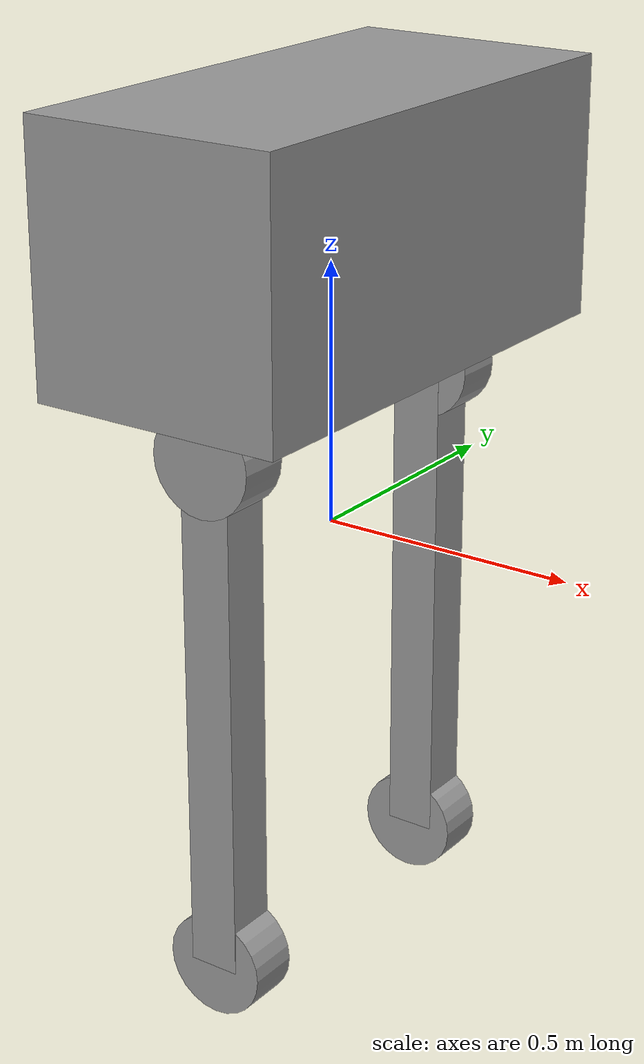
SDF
<?xml version='1.0'?>
<sdf version='1.6'>
  <model name='HumanoidRobot'>
    <link name='link_0'>
      <pose frame=''>-0.000184 -0.328288 -0.269516 0 -0 0</pose>
      <inertial>
        <mass>1</mass>
        <inertia>
          <ixx>0.166667</ixx>
          <ixy>0</ixy>
          <ixz>0</ixz>
          <iyy>0.166667</iyy>
          <iyz>0</iyz>
          <izz>0.166667</izz>
        </inertia>
        <pose frame=''>0 0 0 0 -0 0</pose>
      </inertial>
      <self_collide>0</self_collide>
      <kinematic>0</kinematic>
      <visual name='visual'>
        <pose frame=''>0 0 0 0 -0 0</pose>
        <geometry>
          <box>
            <size>0.1 0.1 1</size>
          </box>
        </geometry>
        <material>
          <lighting>1</lighting>
          <script>
            <uri>file://media/materials/scripts/gazebo.material</uri>
            <name>Gazebo/Grey</name>
          </script>
          <shader type='pixel'>
            <normal_map>__default__</normal_map>
          </shader>
          <ambient>0.3 0.3 0.3 1</ambient>
          <diffuse>0.7 0.7 0.7 1</diffuse>
          <specular>0.01 0.01 0.01 1</specular>
          <emissive>0 0 0 1</emissive>
        </material>
        <transparency>0</transparency>
        <cast_shadows>1</cast_shadows>
      </visual>
      <collision name='collision'>
        <laser_retro>0</laser_retro>
        <max_contacts>10</max_contacts>
        <pose frame=''>0 0 0 0 -0 0</pose>
        <geometry>
          <box>
            <size>0.1 0.1 1</size>
          </box>
        </geometry>
        <surface>
          <friction>
            <ode>
              <mu>1</mu>
              <mu2>1</mu2>
              <fdir1>0 0 0</fdir1>
              <slip1>0</slip1>
              <slip2>0</slip2>
            </ode>
            <torsional>
              <coefficient>1</coefficient>
              <patch_radius>0</patch_radius>
              <surface_radius>0</surface_radius>
              <use_patch_radius>1</use_patch_radius>
              <ode>
                <slip>0</slip>
              </ode>
            </torsional>
          </friction>
          <bounce>
            <restitution_coefficient>0</restitution_coefficient>
            <threshold>1e+06</threshold>
          </bounce>
          <contact>
            <collide_without_contact>0</collide_without_contact>
            <collide_without_contact_bitmask>1</collide_without_contact_bitmask>
            <collide_bitmask>1</collide_bitmask>
            <ode>
              <soft_cfm>0</soft_cfm>
              <soft_erp>0.2</soft_erp>
              <kp>1e+13</kp>
              <kd>1</kd>
              <max_vel>0.01</max_vel>
              <min_depth>0</min_depth>
            </ode>
            <bullet>
              <split_impulse>1</split_impulse>
              <split_impulse_penetration_threshold>-0.01</split_impulse_penetration_threshold>
              <soft_cfm>0</soft_cfm>
              <soft_erp>0.2</soft_erp>
              <kp>1e+13</kp>
              <kd>1</kd>
            </bullet>
          </contact>
        </surface>
      </collision>
    </link>
    <link name='link_0_clone'>
      <pose frame=''>0.006018 0.32712 -0.269515 0 -0 0</pose>
      <inertial>
        <mass>1</mass>
        <inertia>
          <ixx>0.166667</ixx>
          <ixy>0</ixy>
          <ixz>0</ixz>
          <iyy>0.166667</iyy>
          <iyz>0</iyz>
          <izz>0.166667</izz>
        </inertia>
        <pose frame=''>0 0 0 0 -0 0</pose>
      </inertial>
      <self_collide>0</self_collide>
      <kinematic>0</kinematic>
      <visual name='visual'>
        <pose frame=''>0 0 0 0 -0 0</pose>
        <geometry>
          <box>
            <size>0.1 0.1 1</size>
          </box>
        </geometry>
        <material>
          <lighting>1</lighting>
          <script>
            <uri>file://media/materials/scripts/gazebo.material</uri>
            <name>Gazebo/Grey</name>
          </script>
          <shader type='pixel'>
            <normal_map>__default__</normal_map>
          </shader>
          <ambient>0.3 0.3 0.3 1</ambient>
          <diffuse>0.7 0.7 0.7 1</diffuse>
          <specular>0.01 0.01 0.01 1</specular>
          <emissive>0 0 0 1</emissive>
        </material>
        <transparency>0</transparency>
        <cast_shadows>1</cast_shadows>
      </visual>
      <collision name='collision'>
        <laser_retro>0</laser_retro>
        <max_contacts>10</max_contacts>
        <pose frame=''>0 0 0 0 -0 0</pose>
        <geometry>
          <box>
            <size>0.1 0.1 1</size>
          </box>
        </geometry>
        <surface>
          <friction>
            <ode>
              <mu>1</mu>
              <mu2>1</mu2>
              <fdir1>0 0 0</fdir1>
              <slip1>0</slip1>
              <slip2>0</slip2>
            </ode>
            <torsional>
              <coefficient>1</coefficient>
              <patch_radius>0</patch_radius>
              <surface_radius>0</surface_radius>
              <use_patch_radius>1</use_patch_radius>
              <ode>
                <slip>0</slip>
              </ode>
            </torsional>
          </friction>
          <bounce>
            <restitution_coefficient>0</restitution_coefficient>
            <threshold>1e+06</threshold>
          </bounce>
          <contact>
            <collide_without_contact>0</collide_without_contact>
            <collide_without_contact_bitmask>1</collide_without_contact_bitmask>
            <collide_bitmask>1</collide_bitmask>
            <ode>
              <soft_cfm>0</soft_cfm>
              <soft_erp>0.2</soft_erp>
              <kp>1e+13</kp>
              <kd>1</kd>
              <max_vel>0.01</max_vel>
              <min_depth>0</min_depth>
            </ode>
            <bullet>
              <split_impulse>1</split_impulse>
              <split_impulse_penetration_threshold>-0.01</split_impulse_penetration_threshold>
              <soft_cfm>0</soft_cfm>
              <soft_erp>0.2</soft_erp>
              <kp>1e+13</kp>
              <kd>1</kd>
            </bullet>
          </contact>
        </surface>
      </collision>
    </link>
    <link name='link_1'>
      <pose frame=''>-0.000184 -0.326897 -0.769516 1.57 -0 0</pose>
      <inertial>
        <mass>1</mass>
        <inertia>
          <ixx>0.145833</ixx>
          <ixy>0</ixy>
          <ixz>0</ixz>
          <iyy>0.145833</iyy>
          <iyz>0</iyz>
          <izz>0.125</izz>
        </inertia>
        <pose frame=''>0 0 0 0 -0 0</pose>
      </inertial>
      <self_collide>0</self_collide>
      <kinematic>0</kinematic>
      <visual name='visual'>
        <pose frame=''>0 0 0 0 -0 0</pose>
        <geometry>
          <cylinder>
            <radius>0.1</radius>
            <length>0.1</length>
          </cylinder>
        </geometry>
        <material>
          <lighting>1</lighting>
          <script>
            <uri>file://media/materials/scripts/gazebo.material</uri>
            <name>Gazebo/Grey</name>
          </script>
          <shader type='pixel'>
            <normal_map>__default__</normal_map>
          </shader>
          <ambient>0.3 0.3 0.3 1</ambient>
          <diffuse>0.7 0.7 0.7 1</diffuse>
          <specular>0.01 0.01 0.01 1</specular>
          <emissive>0 0 0 1</emissive>
        </material>
        <transparency>0</transparency>
        <cast_shadows>1</cast_shadows>
      </visual>
      <collision name='collision'>
        <laser_retro>0</laser_retro>
        <max_contacts>10</max_contacts>
        <pose frame=''>0 0 0 0 -0 0</pose>
        <geometry>
          <cylinder>
            <radius>0.1</radius>
            <length>0.1</length>
          </cylinder>
        </geometry>
        <surface>
          <friction>
            <ode>
              <mu>1</mu>
              <mu2>1</mu2>
              <fdir1>0 0 0</fdir1>
              <slip1>0</slip1>
              <slip2>0</slip2>
            </ode>
            <torsional>
              <coefficient>1</coefficient>
              <patch_radius>0</patch_radius>
              <surface_radius>0</surface_radius>
              <use_patch_radius>1</use_patch_radius>
              <ode>
                <slip>0</slip>
              </ode>
            </torsional>
          </friction>
          <bounce>
            <restitution_coefficient>0</restitution_coefficient>
            <threshold>1e+06</threshold>
          </bounce>
          <contact>
            <collide_without_contact>0</collide_without_contact>
            <collide_without_contact_bitmask>1</collide_without_contact_bitmask>
            <collide_bitmask>1</collide_bitmask>
            <ode>
              <soft_cfm>0</soft_cfm>
              <soft_erp>0.2</soft_erp>
              <kp>1e+13</kp>
              <kd>1</kd>
              <max_vel>0.01</max_vel>
              <min_depth>0</min_depth>
            </ode>
            <bullet>
              <split_impulse>1</split_impulse>
              <split_impulse_penetration_threshold>-0.01</split_impulse_penetration_threshold>
              <soft_cfm>0</soft_cfm>
              <soft_erp>0.2</soft_erp>
              <kp>1e+13</kp>
              <kd>1</kd>
            </bullet>
          </contact>
        </surface>
      </collision>
    </link>
    <link name='link_1_clone'>
      <pose frame=''>-0.000184 0.327164 -0.769516 1.57 -0 0</pose>
      <inertial>
        <mass>1</mass>
        <inertia>
          <ixx>0.145833</ixx>
          <ixy>0</ixy>
          <ixz>0</ixz>
          <iyy>0.145833</iyy>
          <iyz>0</iyz>
          <izz>0.125</izz>
        </inertia>
        <pose frame=''>0 0 0 0 -0 0</pose>
      </inertial>
      <self_collide>0</self_collide>
      <kinematic>0</kinematic>
      <visual name='visual'>
        <pose frame=''>0 0 0 0 -0 0</pose>
        <geometry>
          <cylinder>
            <radius>0.1</radius>
            <length>0.1</length>
          </cylinder>
        </geometry>
        <material>
          <lighting>1</lighting>
          <script>
            <uri>file://media/materials/scripts/gazebo.material</uri>
            <name>Gazebo/Grey</name>
          </script>
          <shader type='pixel'>
            <normal_map>__default__</normal_map>
          </shader>
          <ambient>0.3 0.3 0.3 1</ambient>
          <diffuse>0.7 0.7 0.7 1</diffuse>
          <specular>0.01 0.01 0.01 1</specular>
          <emissive>0 0 0 1</emissive>
        </material>
        <transparency>0</transparency>
        <cast_shadows>1</cast_shadows>
      </visual>
      <collision name='collision'>
        <laser_retro>0</laser_retro>
        <max_contacts>10</max_contacts>
        <pose frame=''>0 0 0 0 -0 0</pose>
        <geometry>
          <cylinder>
            <radius>0.1</radius>
            <length>0.1</length>
          </cylinder>
        </geometry>
        <surface>
          <friction>
            <ode>
              <mu>1</mu>
              <mu2>1</mu2>
              <fdir1>0 0 0</fdir1>
              <slip1>0</slip1>
              <slip2>0</slip2>
            </ode>
            <torsional>
              <coefficient>1</coefficient>
              <patch_radius>0</patch_radius>
              <surface_radius>0</surface_radius>
              <use_patch_radius>1</use_patch_radius>
              <ode>
                <slip>0</slip>
              </ode>
            </torsional>
          </friction>
          <bounce>
            <restitution_coefficient>0</restitution_coefficient>
            <threshold>1e+06</threshold>
          </bounce>
          <contact>
            <collide_without_contact>0</collide_without_contact>
            <collide_without_contact_bitmask>1</collide_without_contact_bitmask>
            <collide_bitmask>1</collide_bitmask>
            <ode>
              <soft_cfm>0</soft_cfm>
              <soft_erp>0.2</soft_erp>
              <kp>1e+13</kp>
              <kd>1</kd>
              <max_vel>0.01</max_vel>
              <min_depth>0</min_depth>
            </ode>
            <bullet>
              <split_impulse>1</split_impulse>
              <split_impulse_penetration_threshold>-0.01</split_impulse_penetration_threshold>
              <soft_cfm>0</soft_cfm>
              <soft_erp>0.2</soft_erp>
              <kp>1e+13</kp>
              <kd>1</kd>
            </bullet>
          </contact>
        </surface>
      </collision>
    </link>
    <link name='link_1_clone_0'>
      <pose frame=''>0.001082 -0.339906 0.231714 1.57 -0 0</pose>
      <inertial>
        <mass>1</mass>
        <inertia>
          <ixx>0.145833</ixx>
          <ixy>0</ixy>
          <ixz>0</ixz>
          <iyy>0.145833</iyy>
          <iyz>0</iyz>
          <izz>0.125</izz>
        </inertia>
        <pose frame=''>0 0 0 0 -0 0</pose>
      </inertial>
      <self_collide>0</self_collide>
      <kinematic>0</kinematic>
      <visual name='visual'>
        <pose frame=''>0 0 0 0 -0 0</pose>
        <geometry>
          <cylinder>
            <radius>0.1</radius>
            <length>0.1</length>
          </cylinder>
        </geometry>
        <material>
          <lighting>1</lighting>
          <script>
            <uri>file://media/materials/scripts/gazebo.material</uri>
            <name>Gazebo/Grey</name>
          </script>
          <shader type='pixel'>
            <normal_map>__default__</normal_map>
          </shader>
          <ambient>0.3 0.3 0.3 1</ambient>
          <diffuse>0.7 0.7 0.7 1</diffuse>
          <specular>0.01 0.01 0.01 1</specular>
          <emissive>0 0 0 1</emissive>
        </material>
        <transparency>0</transparency>
        <cast_shadows>1</cast_shadows>
      </visual>
      <collision name='collision'>
        <laser_retro>0</laser_retro>
        <max_contacts>10</max_contacts>
        <pose frame=''>0 0 0 0 -0 0</pose>
        <geometry>
          <cylinder>
            <radius>0.1</radius>
            <length>0.1</length>
          </cylinder>
        </geometry>
        <surface>
          <friction>
            <ode>
              <mu>1</mu>
              <mu2>1</mu2>
              <fdir1>0 0 0</fdir1>
              <slip1>0</slip1>
              <slip2>0</slip2>
            </ode>
            <torsional>
              <coefficient>1</coefficient>
              <patch_radius>0</patch_radius>
              <surface_radius>0</surface_radius>
              <use_patch_radius>1</use_patch_radius>
              <ode>
                <slip>0</slip>
              </ode>
            </torsional>
          </friction>
          <bounce>
            <restitution_coefficient>0</restitution_coefficient>
            <threshold>1e+06</threshold>
          </bounce>
          <contact>
            <collide_without_contact>0</collide_without_contact>
            <collide_without_contact_bitmask>1</collide_without_contact_bitmask>
            <collide_bitmask>1</collide_bitmask>
            <ode>
              <soft_cfm>0</soft_cfm>
              <soft_erp>0.2</soft_erp>
              <kp>1e+13</kp>
              <kd>1</kd>
              <max_vel>0.01</max_vel>
              <min_depth>0</min_depth>
            </ode>
            <bullet>
              <split_impulse>1</split_impulse>
              <split_impulse_penetration_threshold>-0.01</split_impulse_penetration_threshold>
              <soft_cfm>0</soft_cfm>
              <soft_erp>0.2</soft_erp>
              <kp>1e+13</kp>
              <kd>1</kd>
            </bullet>
          </contact>
        </surface>
      </collision>
    </link>
    <link name='link_1_clone_0_clone'>
      <pose frame=''>0.015284 0.327243 0.230484 1.57 -0 0</pose>
      <inertial>
        <mass>1</mass>
        <inertia>
          <ixx>0.145833</ixx>
          <ixy>0</ixy>
          <ixz>0</ixz>
          <iyy>0.145833</iyy>
          <iyz>0</iyz>
          <izz>0.125</izz>
        </inertia>
        <pose frame=''>0 0 0 0 -0 0</pose>
      </inertial>
      <self_collide>0</self_collide>
      <kinematic>0</kinematic>
      <visual name='visual'>
        <pose frame=''>0 0 0 0 -0 0</pose>
        <geometry>
          <cylinder>
            <radius>0.1</radius>
            <length>0.1</length>
          </cylinder>
        </geometry>
        <material>
          <lighting>1</lighting>
          <script>
            <uri>file://media/materials/scripts/gazebo.material</uri>
            <name>Gazebo/Grey</name>
          </script>
          <shader type='pixel'>
            <normal_map>__default__</normal_map>
          </shader>
          <ambient>0.3 0.3 0.3 1</ambient>
          <diffuse>0.7 0.7 0.7 1</diffuse>
          <specular>0.01 0.01 0.01 1</specular>
          <emissive>0 0 0 1</emissive>
        </material>
        <transparency>0</transparency>
        <cast_shadows>1</cast_shadows>
      </visual>
      <collision name='collision'>
        <laser_retro>0</laser_retro>
        <max_contacts>10</max_contacts>
        <pose frame=''>0 0 0 0 -0 0</pose>
        <geometry>
          <cylinder>
            <radius>0.1</radius>
            <length>0.1</length>
          </cylinder>
        </geometry>
        <surface>
          <friction>
            <ode>
              <mu>1</mu>
              <mu2>1</mu2>
              <fdir1>0 0 0</fdir1>
              <slip1>0</slip1>
              <slip2>0</slip2>
            </ode>
            <torsional>
              <coefficient>1</coefficient>
              <patch_radius>0</patch_radius>
              <surface_radius>0</surface_radius>
              <use_patch_radius>1</use_patch_radius>
              <ode>
                <slip>0</slip>
              </ode>
            </torsional>
          </friction>
          <bounce>
            <restitution_coefficient>0</restitution_coefficient>
            <threshold>1e+06</threshold>
          </bounce>
          <contact>
            <collide_without_contact>0</collide_without_contact>
            <collide_without_contact_bitmask>1</collide_without_contact_bitmask>
            <collide_bitmask>1</collide_bitmask>
            <ode>
              <soft_cfm>0</soft_cfm>
              <soft_erp>0.2</soft_erp>
              <kp>1e+13</kp>
              <kd>1</kd>
              <max_vel>0.01</max_vel>
              <min_depth>0</min_depth>
            </ode>
            <bullet>
              <split_impulse>1</split_impulse>
              <split_impulse_penetration_threshold>-0.01</split_impulse_penetration_threshold>
              <soft_cfm>0</soft_cfm>
              <soft_erp>0.2</soft_erp>
              <kp>1e+13</kp>
              <kd>1</kd>
            </bullet>
          </contact>
        </surface>
      </collision>
    </link>
    <link name='link_3'>
      <pose frame=''>-0.021834 0.013565 0.565864 0 -0 0</pose>
      <inertial>
        <mass>1</mass>
        <inertia>
          <ixx>0.166667</ixx>
          <ixy>0</ixy>
          <ixz>0</ixz>
          <iyy>0.166667</iyy>
          <iyz>0</iyz>
          <izz>0.166667</izz>
        </inertia>
        <pose frame=''>0 0 0 0 -0 0</pose>
      </inertial>
      <self_collide>0</self_collide>
      <kinematic>0</kinematic>
      <visual name='visual'>
        <pose frame=''>0 0 0 0 -0 0</pose>
        <geometry>
          <box>
            <size>0.5 1 0.5</size>
          </box>
        </geometry>
        <material>
          <lighting>1</lighting>
          <script>
            <uri>file://media/materials/scripts/gazebo.material</uri>
            <name>Gazebo/Grey</name>
          </script>
          <shader type='pixel'>
            <normal_map>__default__</normal_map>
          </shader>
          <ambient>0.3 0.3 0.3 1</ambient>
          <diffuse>0.7 0.7 0.7 1</diffuse>
          <specular>0.01 0.01 0.01 1</specular>
          <emissive>0 0 0 1</emissive>
        </material>
        <transparency>0</transparency>
        <cast_shadows>1</cast_shadows>
      </visual>
      <collision name='collision'>
        <laser_retro>0</laser_retro>
        <max_contacts>10</max_contacts>
        <pose frame=''>0 0 0 0 -0 0</pose>
        <geometry>
          <box>
            <size>0.5 1 0.5</size>
          </box>
        </geometry>
        <surface>
          <friction>
            <ode>
              <mu>1</mu>
              <mu2>1</mu2>
              <fdir1>0 0 0</fdir1>
              <slip1>0</slip1>
              <slip2>0</slip2>
            </ode>
            <torsional>
              <coefficient>1</coefficient>
              <patch_radius>0</patch_radius>
              <surface_radius>0</surface_radius>
              <use_patch_radius>1</use_patch_radius>
              <ode>
                <slip>0</slip>
              </ode>
            </torsional>
          </friction>
          <bounce>
            <restitution_coefficient>0</restitution_coefficient>
            <threshold>1e+06</threshold>
          </bounce>
          <contact>
            <collide_without_contact>0</collide_without_contact>
            <collide_without_contact_bitmask>1</collide_without_contact_bitmask>
            <collide_bitmask>1</collide_bitmask>
            <ode>
              <soft_cfm>0</soft_cfm>
              <soft_erp>0.2</soft_erp>
              <kp>1e+13</kp>
              <kd>1</kd>
              <max_vel>0.01</max_vel>
              <min_depth>0</min_depth>
            </ode>
            <bullet>
              <split_impulse>1</split_impulse>
              <split_impulse_penetration_threshold>-0.01</split_impulse_penetration_threshold>
              <soft_cfm>0</soft_cfm>
              <soft_erp>0.2</soft_erp>
              <kp>1e+13</kp>
              <kd>1</kd>
            </bullet>
          </contact>
        </surface>
      </collision>
    </link>
    <joint name='link_0_JOINT_0' type='revolute'>
      <parent>link_0</parent>
      <child>link_1</child>
      <pose frame=''>0 0 0 0 -0 0</pose>
      <axis>
        <xyz>0 0 1</xyz>
        <use_parent_model_frame>0</use_parent_model_frame>
        <limit>
          <lower>-1.79769e+308</lower>
          <upper>1.79769e+308</upper>
          <effort>-1</effort>
          <velocity>-1</velocity>
        </limit>
        <dynamics>
          <spring_reference>0</spring_reference>
          <spring_stiffness>0</spring_stiffness>
          <damping>0</damping>
          <friction>0</friction>
        </dynamics>
      </axis>
      <physics>
        <ode>
          <limit>
            <cfm>0</cfm>
            <erp>0.2</erp>
          </limit>
          <suspension>
            <cfm>0</cfm>
            <erp>0.2</erp>
          </suspension>
        </ode>
      </physics>
    </joint>
    <joint name='link_0_clone_JOINT_1' type='revolute'>
      <parent>link_0_clone</parent>
      <child>link_1_clone</child>
      <pose frame=''>0 0 0 0 -0 0</pose>
      <axis>
        <xyz>0 0 1</xyz>
        <use_parent_model_frame>0</use_parent_model_frame>
        <limit>
          <lower>-1.79769e+308</lower>
          <upper>1.79769e+308</upper>
          <effort>-1</effort>
          <velocity>-1</velocity>
        </limit>
        <dynamics>
          <spring_reference>0</spring_reference>
          <spring_stiffness>0</spring_stiffness>
          <damping>0</damping>
          <friction>0</friction>
        </dynamics>
      </axis>
      <physics>
        <ode>
          <limit>
            <cfm>0</cfm>
            <erp>0.2</erp>
          </limit>
          <suspension>
            <cfm>0</cfm>
            <erp>0.2</erp>
          </suspension>
        </ode>
      </physics>
    </joint>
    <joint name='link_1_clone_0_JOINT_6' type='fixed'>
      <parent>link_1_clone_0</parent>
      <child>link_0</child>
      <pose frame=''>0 0 0 0 -0 0</pose>
      <physics>
        <ode>
          <limit>
            <cfm>0</cfm>
            <erp>0.2</erp>
          </limit>
          <suspension>
            <cfm>0</cfm>
            <erp>0.2</erp>
          </suspension>
        </ode>
      </physics>
    </joint>
    <joint name='link_1_clone_0_clone_JOINT_7' type='fixed'>
      <parent>link_1_clone_0_clone</parent>
      <child>link_0_clone</child>
      <pose frame=''>0 0 0 0 -0 0</pose>
      <physics>
        <ode>
          <limit>
            <cfm>0</cfm>
            <erp>0.2</erp>
          </limit>
          <suspension>
            <cfm>0</cfm>
            <erp>0.2</erp>
          </suspension>
        </ode>
      </physics>
    </joint>
    <joint name='link_3_JOINT_8' type='revolute'>
      <parent>link_3</parent>
      <child>link_1_clone_0</child>
      <pose frame=''>0 0 0 0 -0 0</pose>
      <axis>
        <xyz>0 0 1</xyz>
        <use_parent_model_frame>0</use_parent_model_frame>
        <limit>
          <lower>-1.79769e+308</lower>
          <upper>1.79769e+308</upper>
          <effort>-1</effort>
          <velocity>-1</velocity>
        </limit>
        <dynamics>
          <spring_reference>0</spring_reference>
          <spring_stiffness>0</spring_stiffness>
          <damping>0</damping>
          <friction>0</friction>
        </dynamics>
      </axis>
      <physics>
        <ode>
          <limit>
            <cfm>0</cfm>
            <erp>0.2</erp>
          </limit>
          <suspension>
            <cfm>0</cfm>
            <erp>0.2</erp>
          </suspension>
        </ode>
      </physics>
    </joint>
    <joint name='link_3_JOINT_9' type='revolute'>
      <parent>link_3</parent>
      <child>link_1_clone_0_clone</child>
      <pose frame=''>0 0 0 0 -0 0</pose>
      <axis>
        <xyz>0 0 1</xyz>
        <use_parent_model_frame>0</use_parent_model_frame>
        <limit>
          <lower>-1.79769e+308</lower>
          <upper>1.79769e+308</upper>
          <effort>-1</effort>
          <velocity>-1</velocity>
        </limit>
        <dynamics>
          <spring_reference>0</spring_reference>
          <spring_stiffness>0</spring_stiffness>
          <damping>0</damping>
          <friction>0</friction>
        </dynamics>
      </axis>
      <physics>
        <ode>
          <limit>
            <cfm>0</cfm>
            <erp>0.2</erp>
          </limit>
          <suspension>
            <cfm>0</cfm>
            <erp>0.2</erp>
          </suspension>
        </ode>
      </physics>
    </joint>
    <static>0</static>
    <allow_auto_disable>1</allow_auto_disable>
  </model>
</sdf>
